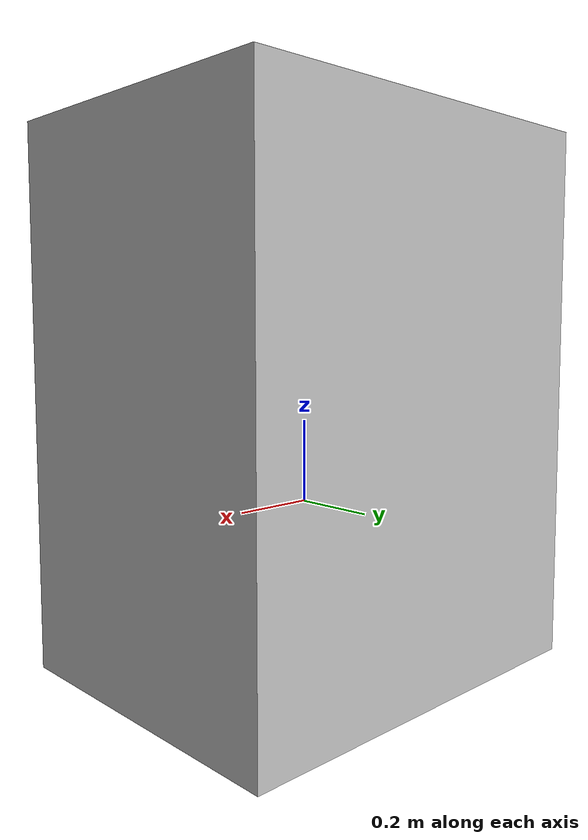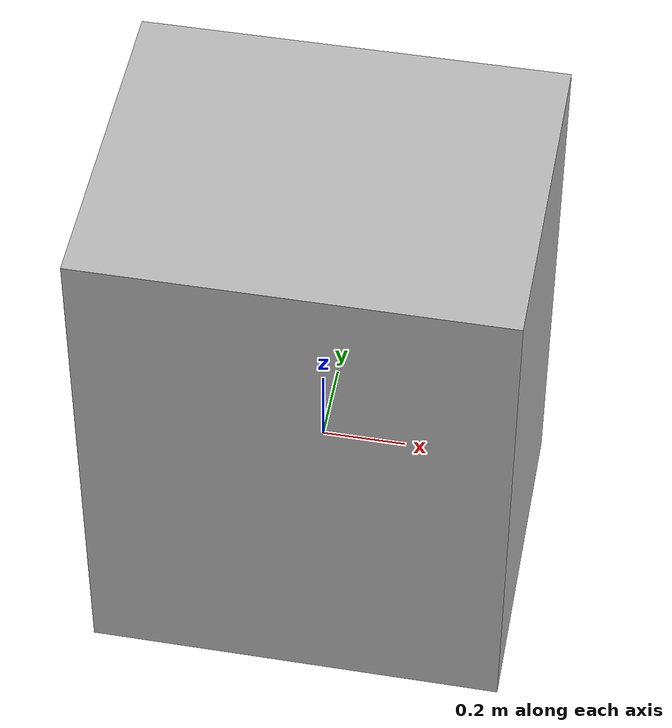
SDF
<?xml version="1.0" ?>
<sdf version="1.5">
  <model name="qr_box_stove">
     <pose>0 0 0.25 0 0 0</pose><!-- set z to 1/2*height, so that box doesn't disappear half in the ground -->
    <static>true</static> <!-- change this to false if model should move -->
    <link name="link">
      <collision 	name="collision">
        <geometry>
          <box>
            <size>1.0 0.8 1.3</size> <!-- size of the box, x y z -->
          </box>
        </geometry>
      </collision>
      <visual name="visual">
        <geometry>
         <box>
            <size>1.0 0.8 1.3</size><!-- size of the box, x y z -->
          </box>
        </geometry>
        <material>
          <script>
            <uri>model://qr_box_stove/materials/scripts</uri>
            <uri>model://qr_box_stove/materials/textures</uri>
            <name>vrc/qr_stove</name>
          </script>
        </material>
      </visual>
    </link>
  </model>
</sdf>
